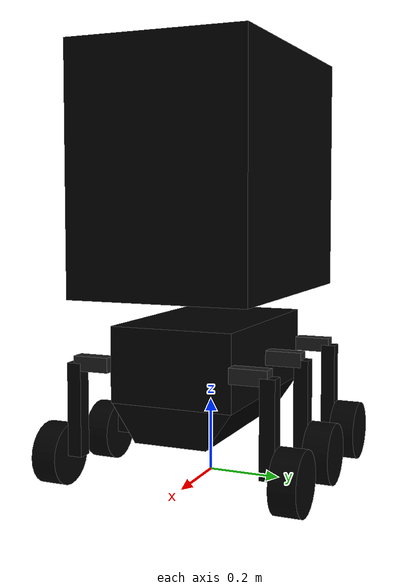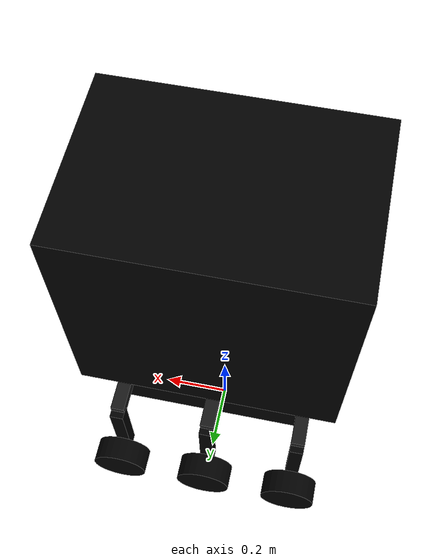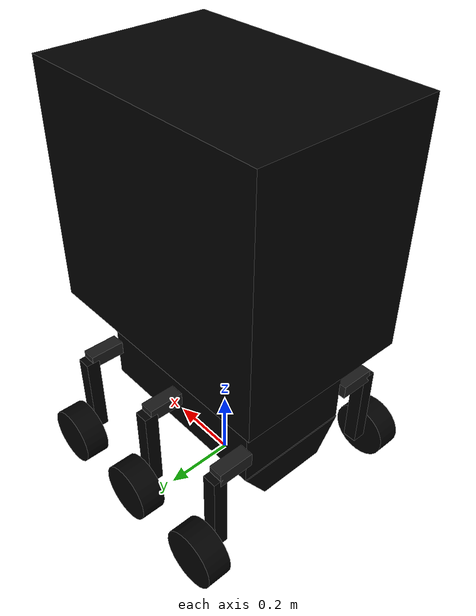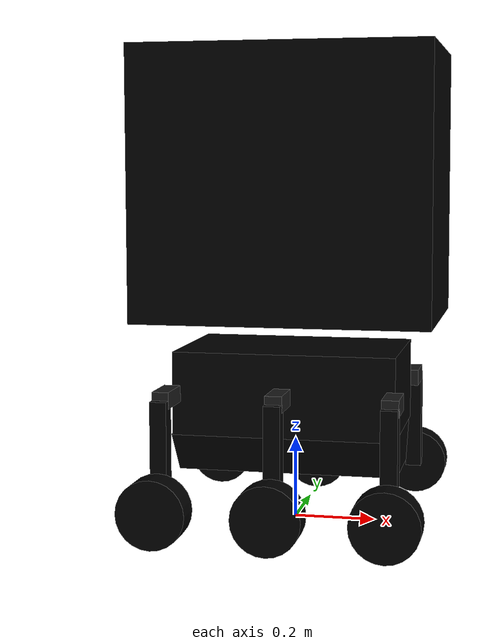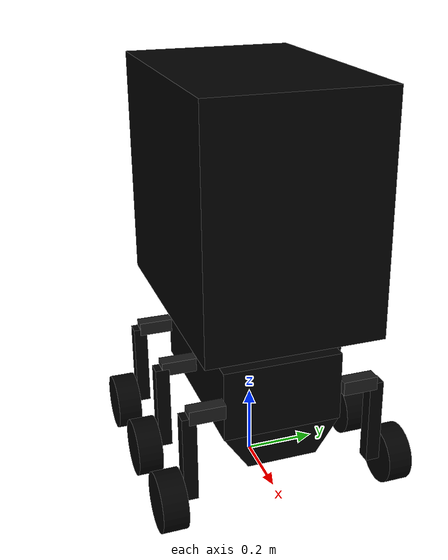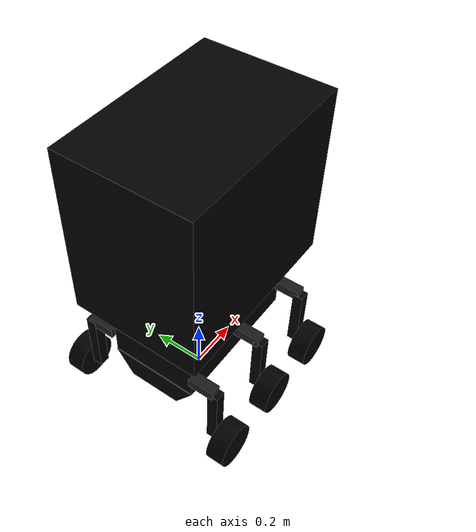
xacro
<?xml version="1.0"?>
<robot name="shl-1" xmlns:xacro="http://wiki.ros.org/xacro">

  <xacro:property name="WHEEL_RADIUS" value="0.0825"/>
  <xacro:property name="WHEEL_WIDTH"  value="0.07"/>
  <xacro:property name="WHEELBASE_L"  value="0.54"/>
  <xacro:property name="TRACK_W"      value="0.53"/>
  <xacro:property name="WHEEL_Z"      value="0.0"/>

  <xacro:property name="x_f" value="${WHEELBASE_L/2.0}"/>
  <xacro:property name="x_m" value="0.0"/>
  <xacro:property name="x_r" value="${-WHEELBASE_L/2.0}"/>
  <xacro:property name="y_l" value="${TRACK_W/2.0}"/>
  <xacro:property name="y_r" value="${-TRACK_W/2.0}"/>

  <material name="black"><color rgba="0 0 0 1" /></material>
  <material name="light_black"><color rgba="0.1 0.1 0.1 1" /></material>

  <xacro:macro name="sd_wheel" params="name parent x y z">
    <link name="${name}_horizontal_arm">
      <visual>
        <xacro:if value="${y > 0}"><origin xyz="0 0.05 0"/></xacro:if>
        <xacro:unless value="${y > 0}"><origin xyz="0 -0.05 0"/></xacro:unless>
        <geometry><box size="0.04 0.1 0.04"/></geometry>
        <material name="light_black"/>
      </visual>
    </link>
    <joint name="${name}_horizontal_arm_joint" type="fixed">
      <parent link="${parent}"/>
      <child link="${name}_horizontal_arm"/>
      <xacro:if value="${y > 0}"><origin xyz="${x} 0.169 ${z}" rpy="0 0 0"/></xacro:if>
      <xacro:unless value="${y > 0}"><origin xyz="${x} -0.169 ${z}" rpy="0 0 0"/></xacro:unless>
    </joint>
    <link name="${name}_vertical_upright">
      <visual>
        <origin xyz="0 0 -0.125"/>
        <geometry><box size="0.04 0.04 0.25"/></geometry>
        <material name="black"/>
      </visual>
    </link>
    <joint name="${name}_steer_joint" type="revolute">
      <parent link="${name}_horizontal_arm"/>
      <child  link="${name}_vertical_upright"/>
      <xacro:if value="${y > 0}"><origin xyz="0 0.1 0" rpy="0 0 0"/></xacro:if>
      <xacro:unless value="${y > 0}"><origin xyz="0 -0.1 0" rpy="0 0 0"/></xacro:unless>
      <axis xyz="0 0 1"/>
      <limit lower="-0.785398" upper="0.785398" effort="20" velocity="6.28"/>
    </joint>
    <link name="${name}_wheel">
      <visual>
        <origin xyz="0 0 0" rpy="-1.57079632679 0 0"/>
        <geometry>
          <cylinder radius="${WHEEL_RADIUS}" length="${WHEEL_WIDTH}"/>
        </geometry>
        <material name="black"/>
      </visual>
    </link>
    <joint name="${name}_drive_joint" type="continuous">
      <parent link="${name}_vertical_upright"/>
      <child  link="${name}_wheel"/>
      <xacro:if value="${y > 0}"><origin xyz="0 0.0575 -0.25" rpy="0 0 0"/></xacro:if>
      <xacro:unless value="${y > 0}"><origin xyz="0 -0.0575 -0.25" rpy="0 0 0"/></xacro:unless>
      <axis xyz="0 1 0"/>
    </joint>
  </xacro:macro>

  <link name="base_link">
    <visual>
      <geometry><box size="0.54 0.338 0.202"/></geometry>
      <origin rpy="0 0 0" xyz="0 0 0"/><material name="black"/>
    </visual>
  </link>

  <link name="base_footprint"></link>

  <joint name="base_joint" type="fixed">
    <parent link="base_footprint"/>
    <child link="base_link"/>
    <origin xyz="0.0 0.0 0.3325" rpy="0 0 0"/>
  </joint>

  <link name="armario">
     <visual><geometry><box size="0.715 0.49 0.655"/></geometry><material name="black"/></visual>
  </link>
  <joint name="armario_link_joint" type="fixed">
    <parent link="base_link"/>
    <child link="armario"/>
    <origin rpy="0 0 0" xyz="0.002 0 0.5025 "/>
  </joint>

  <link name="base_battery">
    <visual>
      <geometry><mesh filename="package://rse_shl1_description/meshes/bases/trapezoid_battery.stl"/></geometry>
      <material name="black"/>
    </visual>
    <collision>
      <geometry><mesh filename="package://rse_shl1_description/meshes/bases/trapezoid_battery.stl"/></geometry>
    </collision>
  </link>

  <joint name="base_battery_joint" type="fixed">
    <parent link="base_link"/>
    <child link="base_battery"/>
    <origin xyz="-0.003 0 -0.15"/>
  </joint>

  <xacro:sd_wheel name="fl" parent="base_link" x="${x_f}" y="${y_l}" z="${WHEEL_Z}"/>
  <xacro:sd_wheel name="fr" parent="base_link" x="${x_f}" y="${y_r}" z="${WHEEL_Z}"/>
  <xacro:sd_wheel name="ml" parent="base_link" x="${x_m}" y="${y_l}" z="${WHEEL_Z}"/>
  <xacro:sd_wheel name="mr" parent="base_link" x="${x_m}" y="${y_r}" z="${WHEEL_Z}"/>
  <xacro:sd_wheel name="rl" parent="base_link" x="${x_r}" y="${y_l}" z="${WHEEL_Z}"/>
  <xacro:sd_wheel name="rr" parent="base_link" x="${x_r}" y="${y_r}" z="${WHEEL_Z}"/>

</robot>
